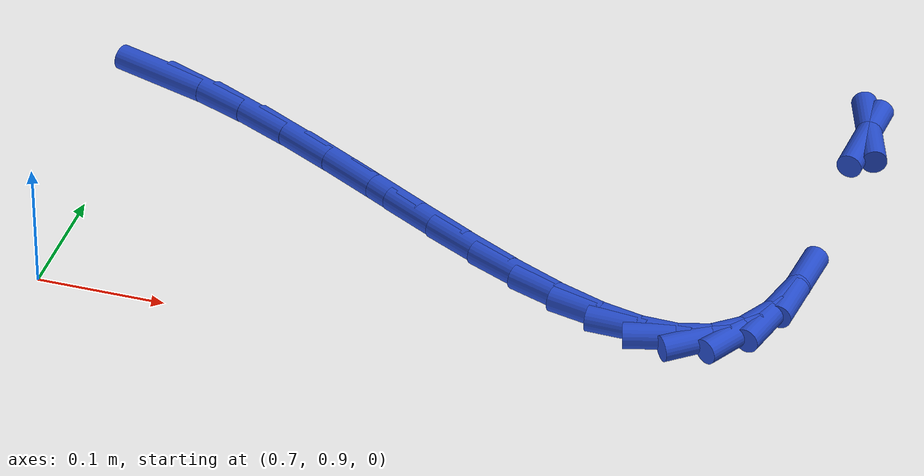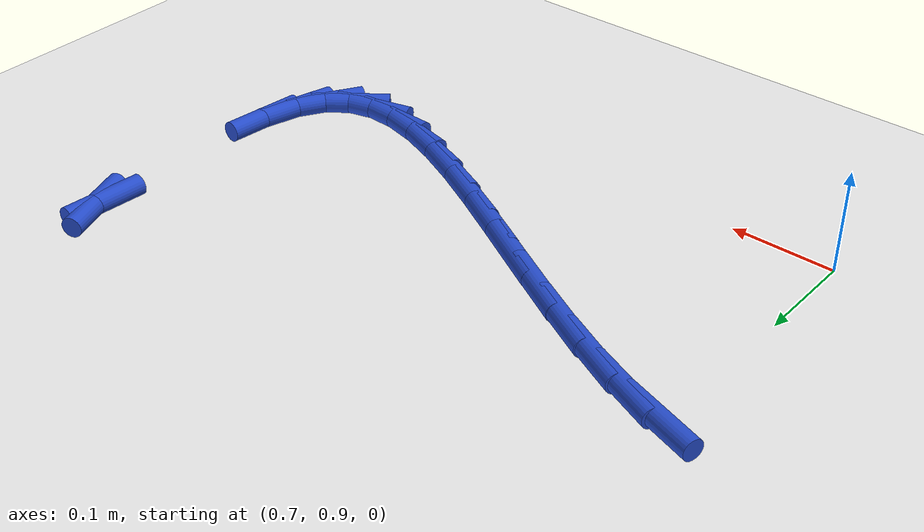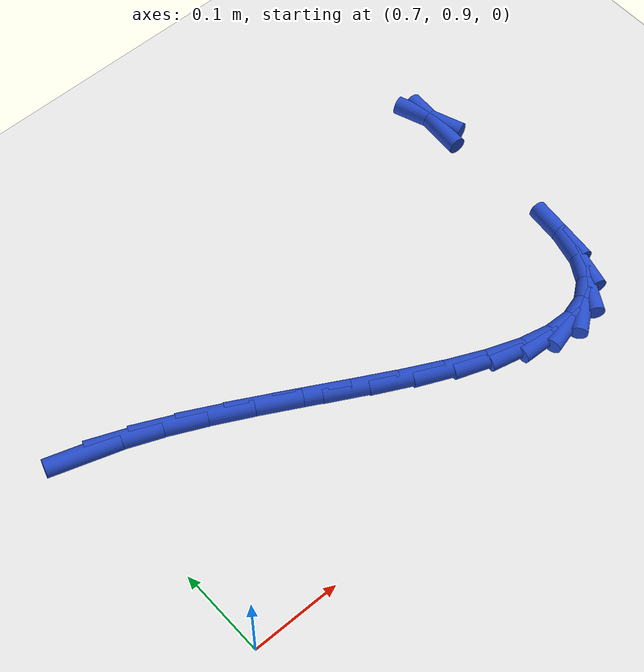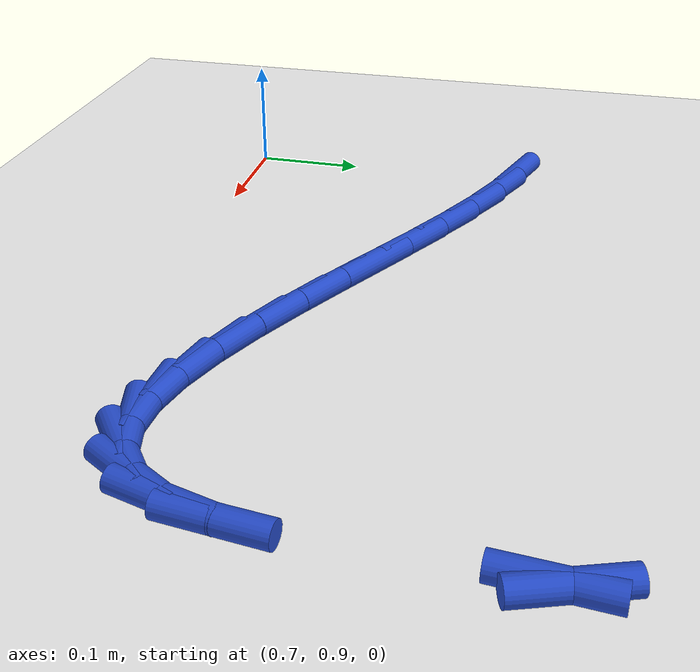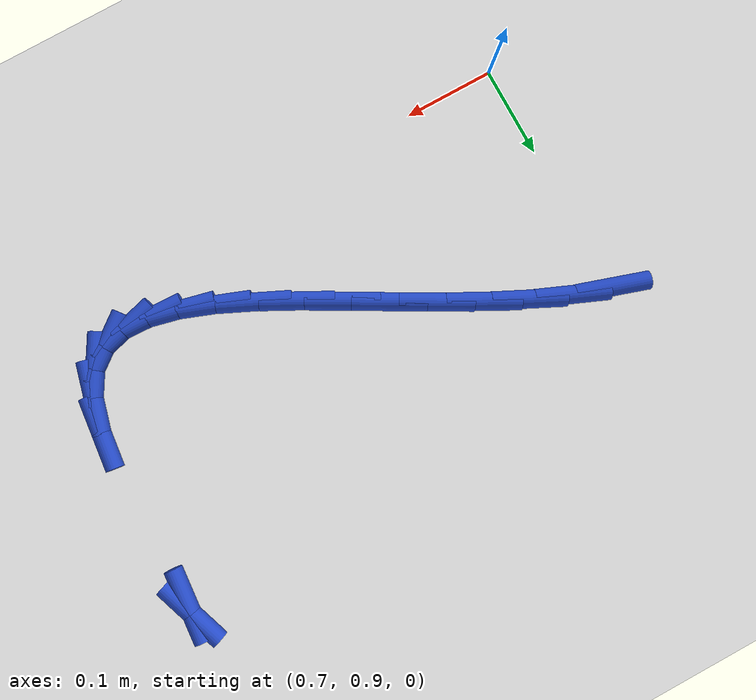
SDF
<sdf version="1.6">
 <world name="default">
  <model name="ground_plane">
   <static>1</static>
   <link name="link">
    <collision name="collision">
     <geometry><plane><normal>0 0 1</normal><size>100 100</size></plane></geometry>
     <surface><friction><ode><mu>100</mu><mu2>50</mu2></ode></friction></surface>
    </collision>
    <visual name="visual">
     <cast_shadows>0</cast_shadows>
     <geometry><plane><normal>0 0 1</normal><size>100 100</size></plane></geometry>
     <material>
      <script><uri>file://media/materials/scripts/gazebo.material</uri><name>Gazebo/WhiteGlow</name></script>
     </material>
    </visual>
   </link>
  </model>
  <model name="line">
   <link name="link_41">
    <pose>0.7030617708628657 1.1682355035764718 0.01 0 1.57 -0.31188554700091176</pose>
    <collision name="collision">
     <geometry><cylinder><radius>0.01</radius><length>0.08</length></cylinder></geometry>
    </collision>
    <visual name="visual">
     <material>
      <script><name>Gazebo/Blue</name><uri>file://media/materials/scripts/gazebo.material</uri></script>
     </material>
     <geometry><cylinder><radius>0.01</radius><length>0.08</length></cylinder></geometry>
    </visual>
   </link>
   <link name="link_42">
    <pose>0.7441557598086586 1.1549864815640345 0.01 0 1.57 -0.3940119534991859</pose>
    <collision name="collision">
     <geometry><cylinder><radius>0.01</radius><length>0.08</length></cylinder></geometry>
    </collision>
    <visual name="visual">
     <material>
      <script><name>Gazebo/Blue</name><uri>file://media/materials/scripts/gazebo.material</uri></script>
     </material>
     <geometry><cylinder><radius>0.01</radius><length>0.08</length></cylinder></geometry>
    </visual>
   </link>
   <link name="link_43">
    <pose>0.7866607835205492 1.1373149106242688 0.01 0 1.57 -0.4502811679912142</pose>
    <collision name="collision">
     <geometry><cylinder><radius>0.01</radius><length>0.08</length></cylinder></geometry>
    </collision>
    <visual name="visual">
     <material>
      <script><name>Gazebo/Blue</name><uri>file://media/materials/scripts/gazebo.material</uri></script>
     </material>
     <geometry><cylinder><radius>0.01</radius><length>0.08</length></cylinder></geometry>
    </visual>
   </link>
   <link name="link_44">
    <pose>0.8300739378282304 1.1163289098210578 0.01 0 1.57 -0.486798429600046</pose>
    <collision name="collision">
     <geometry><cylinder><radius>0.01</radius><length>0.08</length></cylinder></geometry>
    </collision>
    <visual name="visual">
     <material>
      <script><name>Gazebo/Blue</name><uri>file://media/materials/scripts/gazebo.material</uri></script>
     </material>
     <geometry><cylinder><radius>0.01</radius><length>0.08</length></cylinder></geometry>
    </visual>
   </link>
   <link name="link_45">
    <pose>0.8738923185613948 1.0931365982182857 0.01 0 1.57 -0.5071198954846758</pose>
    <collision name="collision">
     <geometry><cylinder><radius>0.01</radius><length>0.08</length></cylinder></geometry>
    </collision>
    <visual name="visual">
     <material>
      <script><name>Gazebo/Blue</name><uri>file://media/materials/scripts/gazebo.material</uri></script>
     </material>
     <geometry><cylinder><radius>0.01</radius><length>0.08</length></cylinder></geometry>
    </visual>
   </link>
   <link name="link_46">
    <pose>0.9176130215497348 1.0688460948798353 0.01 0 1.57 -0.5128387175850626</pose>
    <collision name="collision">
     <geometry><cylinder><radius>0.01</radius><length>0.08</length></cylinder></geometry>
    </collision>
    <visual name="visual">
     <material>
      <script><name>Gazebo/Blue</name><uri>file://media/materials/scripts/gazebo.material</uri></script>
     </material>
     <geometry><cylinder><radius>0.01</radius><length>0.08</length></cylinder></geometry>
    </visual>
   </link>
   <link name="link_47">
    <pose>0.9607331426229436 1.0445655188695913 0.01 0 1.57 -0.5038180873314078</pose>
    <collision name="collision">
     <geometry><cylinder><radius>0.01</radius><length>0.08</length></cylinder></geometry>
    </collision>
    <visual name="visual">
     <material>
      <script><name>Gazebo/Blue</name><uri>file://media/materials/scripts/gazebo.material</uri></script>
     </material>
     <geometry><cylinder><radius>0.01</radius><length>0.08</length></cylinder></geometry>
    </visual>
   </link>
   <link name="link_48">
    <pose>1.0027497776107137 1.021402989251437 0.01 0 1.57 -0.47801895455520976</pose>
    <collision name="collision">
     <geometry><cylinder><radius>0.01</radius><length>0.08</length></cylinder></geometry>
    </collision>
    <visual name="visual">
     <material>
      <script><name>Gazebo/Blue</name><uri>file://media/materials/scripts/gazebo.material</uri></script>
     </material>
     <geometry><cylinder><radius>0.01</radius><length>0.08</length></cylinder></geometry>
    </visual>
   </link>
   <link name="link_49">
    <pose>1.0431600223427369 1.0004666250892553 0.01 0 1.57 -0.4307861925367173</pose>
    <collision name="collision">
     <geometry><cylinder><radius>0.01</radius><length>0.08</length></cylinder></geometry>
    </collision>
    <visual name="visual">
     <material>
      <script><name>Gazebo/Blue</name><uri>file://media/materials/scripts/gazebo.material</uri></script>
     </material>
     <geometry><cylinder><radius>0.01</radius><length>0.08</length></cylinder></geometry>
    </visual>
   </link>
   <link name="link_50">
    <pose>1.0814609726487072 0.9828645454469305 0.01 0 1.57 -0.3532663966977162</pose>
    <collision name="collision">
     <geometry><cylinder><radius>0.01</radius><length>0.08</length></cylinder></geometry>
    </collision>
    <visual name="visual">
     <material>
      <script><name>Gazebo/Blue</name><uri>file://media/materials/scripts/gazebo.material</uri></script>
     </material>
     <geometry><cylinder><radius>0.01</radius><length>0.08</length></cylinder></geometry>
    </visual>
   </link>
   <link name="link_51">
    <pose>1.1171497243583164 0.9697048693883461 0.01 0 1.57 -0.22948333199046386</pose>
    <collision name="collision">
     <geometry><cylinder><radius>0.01</radius><length>0.08</length></cylinder></geometry>
    </collision>
    <visual name="visual">
     <material>
      <script><name>Gazebo/Blue</name><uri>file://media/materials/scripts/gazebo.material</uri></script>
     </material>
     <geometry><cylinder><radius>0.01</radius><length>0.08</length></cylinder></geometry>
    </visual>
   </link>
   <link name="link_52">
    <pose>1.1497233733012577 0.9620957159773857 0.01 0 1.57 -0.0328146930100318</pose>
    <collision name="collision">
     <geometry><cylinder><radius>0.01</radius><length>0.08</length></cylinder></geometry>
    </collision>
    <visual name="visual">
     <material>
      <script><name>Gazebo/Blue</name><uri>file://media/materials/scripts/gazebo.material</uri></script>
     </material>
     <geometry><cylinder><radius>0.01</radius><length>0.08</length></cylinder></geometry>
    </visual>
   </link>
   <link name="link_53">
    <pose>1.1786790153072229 0.9611452042779329 0.01 0 1.57 0.26786818324499573</pose>
    <collision name="collision">
     <geometry><cylinder><radius>0.01</radius><length>0.08</length></cylinder></geometry>
    </collision>
    <visual name="visual">
     <material>
      <script><name>Gazebo/Blue</name><uri>file://media/materials/scripts/gazebo.material</uri></script>
     </material>
     <geometry><cylinder><radius>0.01</radius><length>0.08</length></cylinder></geometry>
    </visual>
   </link>
   <link name="link_54">
    <pose>1.2035137462059056 0.9679614533538716 0.01 0 1.57 0.6601648099261019</pose>
    <collision name="collision">
     <geometry><cylinder><radius>0.01</radius><length>0.08</length></cylinder></geometry>
    </collision>
    <visual name="visual">
     <material>
      <script><name>Gazebo/Blue</name><uri>file://media/materials/scripts/gazebo.material</uri></script>
     </material>
     <geometry><cylinder><radius>0.01</radius><length>0.08</length></cylinder></geometry>
    </visual>
   </link>
   <link name="link_55">
    <pose>1.223724661826998 0.9836525822690851 0.01 0 1.57 1.0396000001866803</pose>
    <collision name="collision">
     <geometry><cylinder><radius>0.01</radius><length>0.08</length></cylinder></geometry>
    </collision>
    <visual name="visual">
     <material>
      <script><name>Gazebo/Blue</name><uri>file://media/materials/scripts/gazebo.material</uri></script>
     </material>
     <geometry><cylinder><radius>0.01</radius><length>0.08</length></cylinder></geometry>
    </visual>
   </link>
   <link name="link_56">
    <pose>1.238808858000193 1.0093267100874572 0.01 0 1.57 1.3131713245645986</pose>
    <collision name="collision">
     <geometry><cylinder><radius>0.01</radius><length>0.08</length></cylinder></geometry>
    </collision>
    <visual name="visual">
     <material>
      <script><name>Gazebo/Blue</name><uri>file://media/materials/scripts/gazebo.material</uri></script>
     </material>
     <geometry><cylinder><radius>0.01</radius><length>0.08</length></cylinder></geometry>
    </visual>
   </link>
   <link name="link_57">
    <pose>1.248387678144507 1.045681718115272 0.01 0 1.57 1.4622001430378122</pose>
    <collision name="collision">
     <geometry><cylinder><radius>0.01</radius><length>0.08</length></cylinder></geometry>
    </collision>
    <visual name="visual">
     <material>
      <script><name>Gazebo/Blue</name><uri>file://media/materials/scripts/gazebo.material</uri></script>
     </material>
     <geometry><cylinder><radius>0.01</radius><length>0.08</length></cylinder></geometry>
    </visual>
   </link>
   <link name="link_62">
    <pose>1.2510205336019506 1.2451171314264313 0.01 0 1.57 1.4930545692776775</pose>
    <collision name="collision">
     <geometry><cylinder><radius>0.01</radius><length>0.08</length></cylinder></geometry>
    </collision>
    <visual name="visual">
     <material>
      <script><name>Gazebo/Blue</name><uri>file://media/materials/scripts/gazebo.material</uri></script>
     </material>
     <geometry><cylinder><radius>0.01</radius><length>0.08</length></cylinder></geometry>
    </visual>
   </link>
   <link name="link_63">
    <pose>1.251727871313033 1.2541973498456849 0.01 0 1.57 -1.22918927473231</pose>
    <collision name="collision">
     <geometry><cylinder><radius>0.01</radius><length>0.08</length></cylinder></geometry>
    </collision>
    <visual name="visual">
     <material>
      <script><name>Gazebo/Blue</name><uri>file://media/materials/scripts/gazebo.material</uri></script>
     </material>
     <geometry><cylinder><radius>0.01</radius><length>0.08</length></cylinder></geometry>
    </visual>
   </link>
  </model>
 </world>
</sdf>
